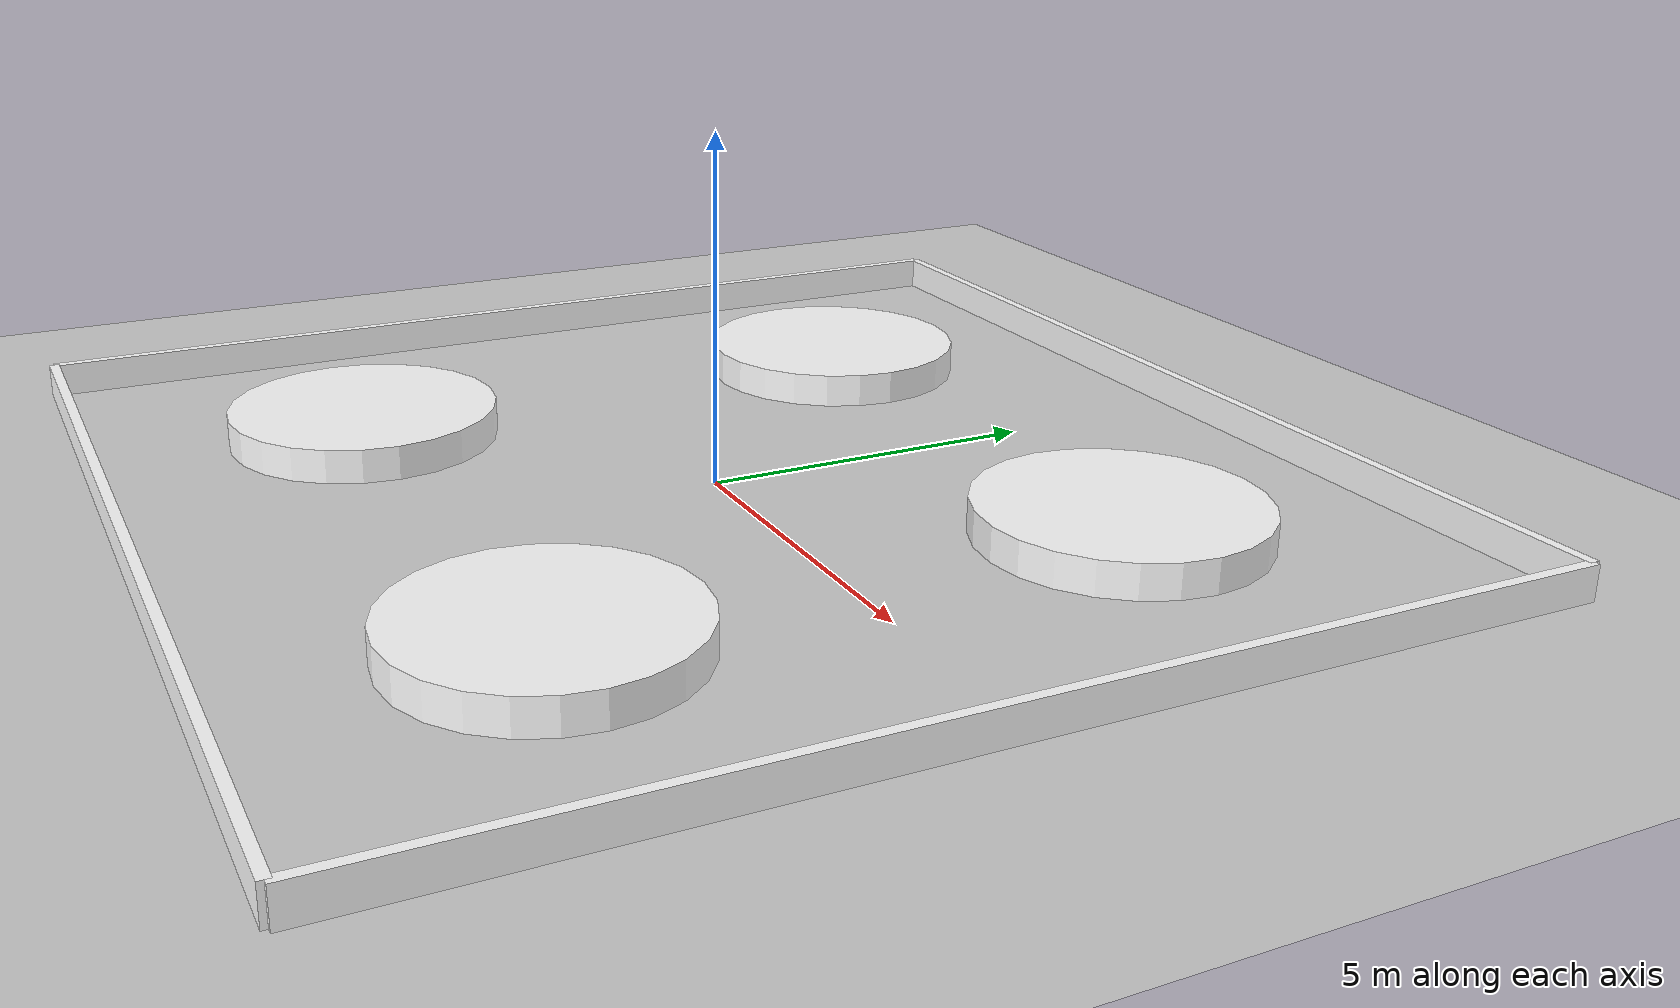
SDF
<?xml version='1.0'?>
<sdf version='1.6'>
  <world name='default'>
    <light name='sun' type='directional'>
      <cast_shadows>1</cast_shadows>
      <pose frame=''>0 0 10 0 -0 0</pose>
      <diffuse>0.8 0.8 0.8 1</diffuse>
      <specular>0.1 0.1 0.1 1</specular>
      <attenuation>
        <range>1000</range>
        <constant>0.9</constant>
        <linear>0.01</linear>
        <quadratic>0.001</quadratic>
      </attenuation>
      <direction>-0.5 0.5 -1</direction>
    </light>
    <model name='ground_plane'>
      <static>1</static>
      <link name='link'>
        <collision name='collision'>
          <geometry>
            <plane>
              <normal>0 0 1</normal>
              <size>100 100</size>
            </plane>
          </geometry>
          <surface>
            <friction>
              <ode>
                <mu>100</mu>
                <mu2>50</mu2>
              </ode>
              <torsional>
                <ode/>
              </torsional>
            </friction>
            <contact>
              <ode/>
            </contact>
            <bounce/>
          </surface>
          <max_contacts>10</max_contacts>
        </collision>
        <visual name='visual'>
          <cast_shadows>0</cast_shadows>
          <geometry>
            <plane>
              <normal>0 0 1</normal>
              <size>100 100</size>
            </plane>
          </geometry>
          <material>
            <script>
              <uri>file://media/materials/scripts/gazebo.material</uri>
              <name>Gazebo/Grey</name>
            </script>
          </material>
        </visual>
        <self_collide>0</self_collide>
        <kinematic>0</kinematic>
        <gravity>1</gravity>
      </link>
    </model>
    <gravity>0 0 -9.8</gravity>
    <magnetic_field>6e-06 2.3e-05 -4.2e-05</magnetic_field>
    <atmosphere type='adiabatic'/>
    <physics name='default_physics' default='0' type='ode'>
      <max_step_size>0.001</max_step_size>
      <real_time_factor>1</real_time_factor>
      <real_time_update_rate>1000</real_time_update_rate>
    </physics>
    <scene>
      <ambient>0.4 0.4 0.4 1</ambient>
      <background>0.7 0.7 0.7 1</background>
      <shadows>1</shadows>
    </scene>
    <spherical_coordinates>
      <surface_model>EARTH_WGS84</surface_model>
      <latitude_deg>0</latitude_deg>
      <longitude_deg>0</longitude_deg>
      <elevation>0</elevation>
      <heading_deg>0</heading_deg>
    </spherical_coordinates>

    <model name='wall_1'>
      <static>1</static>
      <link name='link'>
        <pose frame=''>0 0 0.25 0 -0 0</pose>
        <collision name='collision'>
          <geometry>
            <box>
              <size>16 0.15 0.5</size>
            </box>
          </geometry>
        </collision>
        <visual name='visual'>
          <geometry>
            <box>
              <size>16 0.15 0.5</size>
            </box>
          </geometry>
          <material>
            <ambient>1 1 1 1</ambient>
          </material>
        </visual>
      </link>
      <pose frame=''>0.0 -8.0 0 0 -0 0</pose>
    </model>

    <model name='wall_2'>
      <static>1</static>
      <link name='link'>
        <pose frame=''>0 0 0.25 0 -0 0</pose>
        <collision name='collision'>
          <geometry>
            <box>
              <size>16 0.15 0.5</size>
            </box>
          </geometry>
        </collision>
        <visual name='visual'>
          <geometry>
            <box>
              <size>16 0.15 0.5</size>
            </box>
          </geometry>
          <material>
            <ambient>1 1 1 1</ambient>
          </material>
        </visual>
      </link>
      <pose frame=''>0.0 8.0 0 0 -0 0</pose>
    </model>

    <model name='wall_3'>
      <static>1</static>
      <link name='link'>
        <pose frame=''>0 0 0.25 0 -0 0</pose>
        <collision name='collision'>
          <geometry>
            <box>
              <size>16 0.15 0.5</size>
            </box>
          </geometry>
        </collision>
        <visual name='visual'>
          <geometry>
            <box>
              <size>16 0.15 0.5</size>
            </box>
          </geometry>
          <material>
            <ambient>1 1 1 1</ambient>
          </material>
        </visual>
      </link>
      <pose frame=''>8.0 0.0 0 0 -0 -1.5708</pose>
    </model>

    <model name='wall_4'>
      <static>1</static>
      <link name='link'>
        <pose frame=''>0 0 0.25 0 -0 0</pose>
        <collision name='collision'>
          <geometry>
            <box>
              <size>16 0.15 0.5</size>
            </box>
          </geometry>
        </collision>
        <visual name='visual'>
          <geometry>
            <box>
              <size>16 0.15 0.5</size>
            </box>
          </geometry>
          <material>
            <ambient>1 1 1 1</ambient>
          </material>
        </visual>
      </link>
      <pose frame=''>-8.0 0.0 0 0 -0 -1.5708</pose>
    </model>

    <model name='Cylinder_1'>
      <link name='link'>
        <collision name='Cylinder_1_Collision'>
          <geometry>
            <cylinder>
              <radius>2.0</radius>
              <length>0.5</length>
            </cylinder>
          </geometry>
          <pose frame=''>0 0 0.25 0 -0 0</pose>
        </collision>
        <visual name='Cylinder_1_Visual'>
          <pose frame=''>0 0 0.25 0 -0 0</pose>
          <geometry>
            <cylinder>
              <radius>2.0</radius>
              <length>0.5</length>
            </cylinder>
          </geometry>
          <material>
            <ambient>1 1 1 1</ambient>
          </material>
        </visual>
      </link>
      <pose frame=''>-4 -4 0 0 0 0</pose>
    </model>

    <model name='Cylinder_4'>
      <link name='link'>
        <collision name='Cylinder_4_Collision'>
          <geometry>
            <cylinder>
              <radius>2.0</radius>
              <length>0.5</length>
            </cylinder>
          </geometry>
          <pose frame=''>0 0 0.25 0 -0 0</pose>
        </collision>
        <visual name='Cylinder_4_Visual'>
          <pose frame=''>0 0 0.25 0 -0 0</pose>
          <geometry>
            <cylinder>
              <radius>2.0</radius>
              <length>0.5</length>
            </cylinder>
          </geometry>
          <material>
            <ambient>1 1 1 1</ambient>
          </material>
        </visual>
      </link>
      <pose frame=''>4 4 0 0 0 0</pose>
    </model>

    <model name='Cylinder_2'>
      <link name='link'>
        <collision name='Cylinder_2_Collision'>
          <geometry>
            <cylinder>
              <radius>2.0</radius>
              <length>0.5</length>
            </cylinder>
          </geometry>
          <pose frame=''>0 0 0.25 0 -0 0</pose>
        </collision>
        <visual name='Cylinder_2_Visual'>
          <pose frame=''>0 0 0.25 0 -0 0</pose>
          <geometry>
            <cylinder>
              <radius>2.0</radius>
              <length>0.5</length>
            </cylinder>
          </geometry>
          <material>
            <ambient>1 1 1 1</ambient>
          </material>
        </visual>
      </link>
      <pose frame=''>-4 4 0 0 0 0</pose>
    </model>

    <model name='Cylinder_3'>
      <link name='link'>
        <collision name='Cylinder_3_Collision'>
          <geometry>
            <cylinder>
              <radius>2.0</radius>
              <length>0.5</length>
            </cylinder>
          </geometry>
          <pose frame=''>0 0 0.25 0 -0 0</pose>
        </collision>
        <visual name='Cylinder_3_Visual'>
          <pose frame=''>0 0 0.25 0 -0 0</pose>
          <geometry>
            <cylinder>
              <radius>2.0</radius>
              <length>0.5</length>
            </cylinder>
          </geometry>
          <material>
            <ambient>1 1 1 1</ambient>
          </material>
        </visual>
      </link>
      <pose frame=''>4 -4 0 0 0 0</pose>
    </model>

  </world>
</sdf>
